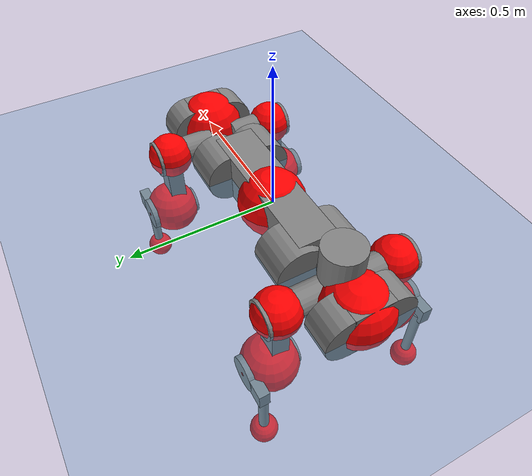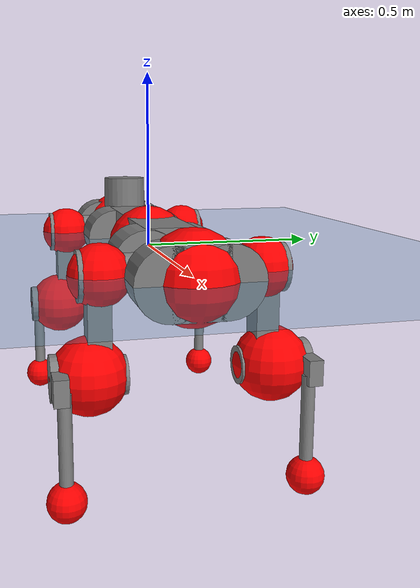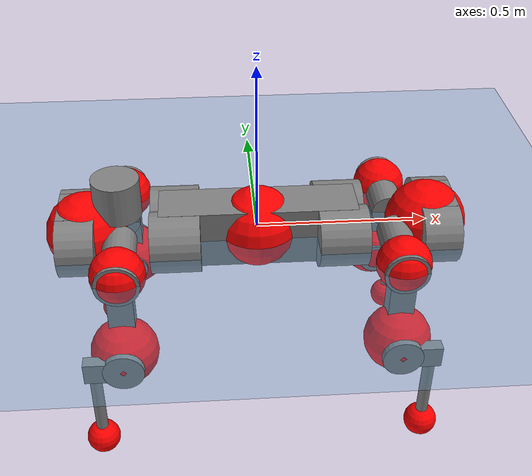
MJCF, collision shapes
<mujoco model="anymal_c">
  <compiler angle="radian" assetdir="assets" balanceinertia="true" inertiafromgeom="false"/>

  <option timestep="0.005" density="1.2" viscosity="2e-05"/>

  <size nkey="1"/>

  <visual>
    <quality shadowsize="8192"/>
    <map shadowclip="0.5"/>
  </visual>

  <default>
    <default class="/">
      <material specular="0" shininess="0.25"/>
      <geom contype="0" conaffinity="0" group="1" solref="-1000 -80"/>
      <site size="0.01 0.005 0.005" group="5"/>
      <general forcelimited="true" forcerange="-80 80" biastype="affine" gainprm="80" biasprm="0 -80 -2"/>
      <default class="anymal_c">
        <joint armature="0.01" damping="0.01" frictionloss="0.1"/>
        <default class="visual">
          <geom type="mesh" group="2"/>
          <default class="visual_zflip"/>
        </default>
        <default class="collision">
          <geom type="cylinder" group="3"/>
          <default class="foot">
            <geom size="0.03 0 0" type="sphere" condim="6" priority="1" friction="0.8 0.02 0.01" solimp="0.015 1 0.03"/>
          </default>
        </default>
      </default>
      <default class="reward_collision_sphere">
        <geom group="5" rgba="1 0 0 1"/>
      </default>
    </default>
  </default>

  <asset>
    <texture type="skybox" colorspace="auto" name="//unnamed_texture_0" builtin="gradient" rgb1="0.95 0.95 0.95" rgb2="0.95 0.95 0.95" width="100" height="600"/>
    <texture type="2d" colorspace="auto" name="texplane" builtin="checker" rgb1="0.345 0.575 0.748" rgb2="0.345 0.575 0.748" markrgb="1 1 1" width="512" height="512"/>
    <texture type="2d" colorspace="linear" name="base" file="base.png"/>
    <texture type="2d" colorspace="linear" name="top_shell" file="top_shell.png"/>
    <texture type="2d" colorspace="linear" name="bottom_shell" file="bottom_shell.png"/>
    <texture type="2d" colorspace="linear" name="remote" file="remote.png"/>
    <texture type="2d" colorspace="linear" name="hatch" file="hatch.png"/>
    <texture type="2d" colorspace="linear" name="handle" file="handle.png"/>
    <texture type="2d" colorspace="linear" name="face" file="face.png"/>
    <texture type="2d" colorspace="linear" name="battery" file="battery.png"/>
    <texture type="2d" colorspace="linear" name="lidar_cage" file="lidar_cage.png"/>
    <texture type="2d" colorspace="linear" name="depth_camera" file="depth_camera.png"/>
    <texture type="2d" colorspace="linear" name="wide_angle_camera" file="wide_angle_camera.png"/>
    <texture type="2d" colorspace="linear" name="lidar" file="lidar.png"/>
    <texture type="2d" colorspace="linear" name="drive" file="drive.png"/>
    <texture type="2d" colorspace="linear" name="hip_l" file="hip_l.png"/>
    <texture type="2d" colorspace="linear" name="shank_l" file="shank_l.png"/>
    <texture type="2d" colorspace="linear" name="foot" file="foot.png"/>
    <texture type="2d" colorspace="linear" name="thigh" file="thigh.png"/>
    <texture type="2d" colorspace="linear" name="shank_r" file="shank_r.png"/>
    <texture type="2d" colorspace="linear" name="hip_r" file="hip_r.png"/>
    <material name="MatPlane" class="/" texture="texplane" texuniform="true" texrepeat="2 2" specular="0.9" shininess="0.5"/>
    <material name="black_plastic" class="/" rgba="0.007 0.007 0.007 1"/>
    <material name="green" class="/" rgba="0.052 0.178 0.033 1"/>
    <material name="red" class="/" rgba="0.178 0.006 0.005 1"/>
    <material name="yellow" class="/" rgba="0.178 0.119 0.006 1"/>
    <material name="lwl" class="/" rgba="0.8 0.8 0.8 1"/>
    <material name="base" class="/" texture="base"/>
    <material name="top_shell" class="/" texture="top_shell"/>
    <material name="bottom_shell" class="/" texture="bottom_shell"/>
    <material name="hip_l" class="/" texture="hip_l"/>
    <material name="thigh" class="/" texture="thigh"/>
    <material name="shank_l" class="/" texture="shank_l"/>
    <material name="foot" class="/" texture="foot"/>
    <material name="hip_r" class="/" texture="hip_r"/>
    <material name="shank" class="/" texture="shank_r"/>
    <material name="hatch" class="/" texture="hatch"/>
    <material name="remote" class="/" texture="remote"/>
    <material name="handle" class="/" texture="handle"/>
    <material name="face" class="/" texture="face"/>
    <material name="depth_camera" class="/" texture="depth_camera"/>
    <material name="wide_angle_camera" class="/" texture="wide_angle_camera"/>
    <material name="battery" class="/" texture="battery"/>
    <material name="lidar_cage" class="/" texture="lidar_cage"/>
    <material name="lidar" class="/" texture="lidar"/>
    <material name="drive" class="/" texture="drive"/>
    <mesh name="base_0" class="/" file="base_0.obj"/>
    <mesh name="base_1" class="/" file="base_1.obj"/>
    <mesh name="base_2" class="/" file="base_2.obj"/>
    <mesh name="base_3" class="/" file="base_3.obj"/>
    <mesh name="base_4" class="/" file="base_4.obj"/>
    <mesh name="base_5" class="/" file="base_5.obj"/>
    <mesh name="top_shell" class="/" file="top_shell.obj"/>
    <mesh name="bottom_shell" class="/" file="bottom_shell.obj"/>
    <mesh name="remote" class="/" file="remote.obj"/>
    <mesh name="handle" class="/" file="handle.obj"/>
    <mesh name="face" class="/" file="face.obj"/>
    <mesh name="wide_angle_camera" class="/" file="wide_angle_camera.obj"/>
    <mesh name="depth_camera" class="/" file="depth_camera.obj"/>
    <mesh name="battery" class="/" file="battery.obj"/>
    <mesh name="lidar_cage" class="/" file="lidar_cage.obj"/>
    <mesh name="lidar" class="/" file="lidar.obj"/>
    <mesh name="drive" class="/" file="drive.obj"/>
    <mesh name="hip_l" class="/" file="hip_l.obj"/>
    <mesh name="thigh" class="/" file="thigh.obj"/>
    <mesh name="shank_l" class="/" file="shank_l.obj"/>
    <mesh name="foot" class="/" file="foot.obj"/>
    <mesh name="hip_r" class="/" file="hip_r.obj"/>
    <mesh name="hatch" class="/" file="hatch.obj"/>
    <mesh name="shank_r" class="/" file="shank_r.obj"/>
  </asset>

  <worldbody>
    <geom name="floor" class="/" size="100 100 0.125" type="plane" group="0" material="MatPlane"/>
    <light name="toplight_shadow" class="/" pos="0 0 5" dir="0.0990148 0.0990148 -0.990148" type="directional" ambient="0.04 0.04 0.04" diffuse="0.55 0.55 0.55" specular="0.12 0.12 0.12"/>
    <light name="toplight_fill" class="/" pos="0 0 5" dir="0.0990148 0.0990148 -0.990148" type="directional" castshadow="false" ambient="0.04 0.04 0.04" diffuse="0.3 0.3 0.3" specular="0.08 0.08 0.08"/>
    <body name="trunk" childclass="anymal_c" pos="0.0027573 -5.7391e-05 -0.000113016" quat="1 -9.23463e-05 0.000422633 0.000278437">
      <inertial pos="0.00270155 0.0010085 0.0427757" quat="0.496115 0.501822 0.498969 0.503065" mass="18.1216" diaginertia="1.10349 0.537328 0.116993"/>
      <joint name="//unnamed_joint_0" type="free" armature="0" damping="0" frictionloss="0"/>
      <geom name="//unnamed_geom_1" class="visual" material="green" mesh="base_0"/>
      <geom name="//unnamed_geom_2" class="visual" material="yellow" mesh="base_1"/>
      <geom name="//unnamed_geom_3" class="visual" material="red" mesh="base_2"/>
      <geom name="//unnamed_geom_4" class="visual" material="black_plastic" mesh="base_3"/>
      <geom name="//unnamed_geom_5" class="visual" material="lwl" mesh="base_4"/>
      <geom name="//unnamed_geom_6" class="visual" material="base" mesh="base_5"/>
      <geom name="trunk_1" class="collision" size="0.284813 0.068748 0.0883903" type="box"/>
      <geom name="trunk_2" class="collision" size="0.0883903 0.0712033" pos="0.239431 0.067311 0" quat="0.707107 0 0.707107 0"/>
      <geom name="trunk_3" class="collision" size="0.0883903 0.0712033" pos="-0.239431 0.067311 0" quat="0.707107 0 0.707107 0"/>
      <geom name="trunk_4" class="collision" size="0.0883903 0.0712033" pos="0.239431 -0.067311 0" quat="0.707107 0 0.707107 0"/>
      <geom name="trunk_5" class="collision" size="0.0883903 0.0712033" pos="-0.239431 -0.067311 0" quat="0.707107 0 0.707107 0"/>
      <geom name="//unnamed_geom_12" class="visual" material="top_shell" mesh="top_shell"/>
      <geom name="//unnamed_geom_13" class="visual" material="bottom_shell" mesh="bottom_shell"/>
      <geom name="//unnamed_geom_14" class="visual" material="remote" mesh="remote"/>
      <geom name="//unnamed_geom_15" class="visual" material="handle" mesh="handle"/>
      <geom name="//unnamed_geom_16" class="visual" pos="0.456295 0 0" quat="1 0 0 0" material="face" mesh="face"/>
      <geom name="trunk_6" class="collision" size="0.0540163 0.068748 0.0883903" pos="0.51684 0 0" type="box"/>
      <geom name="//unnamed_geom_18" class="collision" size="0.0883903 0.0540163" pos="0.51684 0.067311 0" quat="0.707107 0 0.707107 0"/>
      <geom name="//unnamed_geom_19" class="collision" size="0.0883903 0.0540163" pos="0.51684 -0.067311 0" quat="0.707107 0 0.707107 0"/>
      <geom name="//unnamed_geom_20" class="visual" pos="0.50819 0 -0.0241621" quat="0.965926 0 0.258819 0" material="depth_camera" mesh="depth_camera"/>
      <geom name="//unnamed_geom_21" class="visual" pos="0.564726 0 0.0132324" material="wide_angle_camera" mesh="wide_angle_camera"/>
      <geom name="//unnamed_geom_22" class="visual_zflip" pos="-0.456295 0 0" quat="0 0 0 1" material="face" mesh="face"/>
      <geom name="trunk_7" class="collision" size="0.0540163 0.068748 0.0883903" pos="-0.51684 0 0" quat="0 0 0 1" type="box"/>
      <geom name="//unnamed_geom_24" class="collision" size="0.0883903 0.0540163" pos="-0.51684 -0.067311 0" quat="0 -0.707107 0 0.707107"/>
      <geom name="//unnamed_geom_25" class="collision" size="0.0883903 0.0540163" pos="-0.51684 0.067311 0" quat="0 -0.707107 0 0.707107"/>
      <geom name="//unnamed_geom_26" class="visual" pos="-0.50819 0 -0.0241621" quat="0 -0.258819 0 0.965926" material="depth_camera" mesh="depth_camera"/>
      <geom name="//unnamed_geom_27" class="visual_zflip" pos="-0.564726 0 0.0132324" quat="0 0 0 1" material="wide_angle_camera" mesh="wide_angle_camera"/>
      <geom name="//unnamed_geom_28" class="visual" material="battery" mesh="battery"/>
      <geom name="//unnamed_geom_29" class="visual" pos="0 0.0716866 0.0273265" quat="0.683013 -0.183013 0.183013 0.683013" material="depth_camera" mesh="depth_camera"/>
      <geom name="//unnamed_geom_30" class="visual" pos="0 -0.0716866 0.0273265" quat="0.683013 0.183013 0.183013 -0.683013" material="depth_camera" mesh="depth_camera"/>
      <geom name="//unnamed_geom_31" class="visual" pos="-0.400703 0 0.0649685" quat="1 0 0 0" material="lidar_cage" mesh="lidar_cage"/>
      <geom name="trunk_8" class="collision" size="0.068748 0.0589268" pos="-0.400703 0 0.118004"/>
      <geom name="//unnamed_geom_33" class="visual" pos="-0.400703 -5.47059e-05 0.125694" quat="0.707107 0 0 -0.707107" material="lidar" mesh="lidar"/>
      <geom name="//unnamed_geom_34" class="visual" pos="0.330139 0.0999773 1.33964e-09" quat="0.258819 0.965926 0 0" material="drive" mesh="drive"/>
      <geom name="//unnamed_geom_35" class="visual" pos="0.330139 -0.0999773 -1.33964e-09" quat="0.258819 -0.965926 0 0" material="drive" mesh="drive"/>
      <geom name="//unnamed_geom_36" class="visual" pos="-0.330139 0.0999773 -1.33964e-09" quat="0 0 0.965926 -0.258819" material="drive" mesh="drive"/>
      <geom name="//unnamed_geom_37" class="visual" pos="-0.330139 -0.0999773 1.33964e-09" quat="0 0 -0.965926 -0.258819" material="drive" mesh="drive"/>
      <geom name="//unnamed_geom_38" class="visual" pos="0.127696 0 0.0645266" quat="1 0 0 0" material="hatch" mesh="hatch"/>
      <geom name="//unnamed_geom_39" class="reward_collision_sphere" size="0.117854"/>
      <geom name="//unnamed_geom_40" class="reward_collision_sphere" size="0.117854" pos="0.495374 0 0"/>
      <geom name="//unnamed_geom_41" class="reward_collision_sphere" size="0.117854" pos="-0.495374 0 0"/>
      <site name="imu" pos="0.269386 0.0117806 0.0275172" size="0.00982114"/>
      <camera name="track" pos="0 -1.92317 0" quat="0.707107 0.707107 0 0" mode="trackcom"/>
      <camera name="ego_camera" pos="0.495374 0 -0.035357" quat="-0.5 -0.5 0.5 0.5"/>
      <body name="LF_HIP" pos="0.329456 0.100575 -0.00141958" quat="0.258152 0.966104 -0.000349811 -0.00103177">
        <inertial pos="0.0596886 -0.0143595 -0.00725481" quat="-0.128989 0.70998 -0.134326 0.679151" mass="2.65144" diaginertia="0.00953063 0.00390277 0.0017766"/>
        <joint name="LF_HAA" pos="0 0 0" axis="0.999913 -0.0107429 -0.0076409" range="-0.718604 0.489844" armature="0.00852079" damping="0.00448562" frictionloss="0.101884"/>
        <geom name="//unnamed_geom_42" class="visual" pos="0 7.8805e-05 -1.29437e-05" quat="0.258819 -0.965926 0 0" material="hip_l" mesh="hip_l"/>
        <geom name="//unnamed_geom_43" class="visual" pos="0.0659398 -0.0780391 -0.0444815" quat="0.183013 -0.683013 0.683013 0.183013" material="drive" mesh="drive"/>
        <geom name="//unnamed_geom_44" class="collision" size="0.0491057 0.068748" pos="0.0659398 -0.0115004 -0.00610351" quat="-0.353553 -0.612372 0.612372 -0.353553"/>
        <body name="LF_THIGH" pos="0.0647395 -0.0698948 -0.0383761" quat="0.183103 -0.683096 0.682891 0.183066">
          <inertial pos="0.0336967 0.000131514 -0.219672" quat="0.993444 -0.00643935 -0.0797708 0.0816395" mass="2.94057" diaginertia="0.0495001 0.0246771 0.00225473"/>
          <joint name="LF_HFE" pos="0 0 0" axis="0.999979 -0.00248134 0.00597485" range="-3.1445 3.13595" armature="0.0112394" damping="0.00178999" frictionloss="0.0914225"/>
          <geom name="//unnamed_geom_45" class="visual" pos="0.00277044 4.36557e-06 0" quat="0.707107 0 0 -0.707107" material="thigh" mesh="thigh"/>
          <geom name="//unnamed_geom_46" class="collision" size="0.0638374 0.0392846" pos="0.0440332 0 0" quat="0.5 0.5 -0.5 -0.5"/>
          <geom name="//unnamed_geom_47" class="collision" size="0.0368293 0.0294634 0.138786" pos="0.0330249 0 -0.124911" quat="0.707107 0 0 -0.707107" type="box"/>
          <geom name="//unnamed_geom_48" class="visual" pos="0.110413 0 -0.251919" quat="1 0 0 0" material="drive" mesh="drive"/>
          <geom name="//unnamed_geom_49" class="collision" size="0.0491057 0.068748" pos="0.0333552 0 -0.251919" quat="0.707107 0 0.707107 0"/>
          <geom name="//unnamed_geom_50" class="reward_collision_sphere" size="0.0785691" pos="0.0275208 0 0"/>
          <body name="LF_SHANK" pos="0.110415 -0.00287608 -0.251214" quat="0.999999 -0.000540413 0.000570416 0.000670961">
            <inertial pos="0.00670627 -0.0578278 -0.0711633" quat="0.991404 -0.129009 -0.00034546 -0.0217898" mass="0.57991" diaginertia="0.0162494 0.00771657 0.00059532"/>
            <joint name="LF_KFE" pos="0 0 0" axis="0.999996 0.00283243 0.000129926" stiffness="9.36807e-05" range="-3.14087 3.15853" armature="0.00993368" damping="0" frictionloss="0.0970157"/>
            <geom name="//unnamed_geom_51" class="visual" pos="0.000903381 0.00481688 0" quat="0.707107 0 0 -0.707107" material="shank_l" mesh="shank_l"/>
            <geom name="LF_kfe_act" class="collision" size="0.0589268 0.0196423" pos="0.0220166 0 0" quat="0.5 0.5 -0.5 -0.5"/>
            <geom name="//unnamed_geom_53" class="collision" size="0.0564706 0.0331463 0.0186602" pos="0.0220166 -0.0552902 0" quat="0.5 0.5 -0.5 -0.5" type="box"/>
            <geom name="//unnamed_geom_54" class="visual" pos="0.0143656 -0.0830192 -0.29874" quat="0.382683 0 0 -0.92388" material="foot" mesh="foot"/>
            <geom name="LF_calf" class="collision" size="0.017187 0.138726" pos="0.0143658 -0.0845714 -0.14937" quat="0.707107 0 0 -0.707107"/>
            <geom name="LF_foot" class="foot" size="0.0318035" pos="0.0143658 -0.0845714 -0.278852" quat="0.707107 0 0 -0.707107"/>
            <geom name="//unnamed_geom_57" class="reward_collision_sphere" size="0.0982114" pos="-0.0550416 0 0"/>
            <geom name="//unnamed_geom_58" class="reward_collision_sphere" size="0.0491057" pos="0.0143658 -0.0845714 -0.278852"/>
            <site name="LF_foot" class="foot" pos="0.0143658 -0.0845714 -0.278852" quat="0.707107 0 0 -0.707107" size="0.00982114"/>
          </body>
        </body>
      </body>
      <body name="RF_HIP" pos="0.327877 -0.0980506 -0.00164155" quat="0.259114 -0.965847 0.000379171 0.000241443">
        <inertial pos="0.0651317 0.0143867 -0.0101376" quat="0.131316 0.684467 0.124987 0.706144" mass="2.69568" diaginertia="0.00975417 0.00408069 0.00183918"/>
        <joint name="RF_HAA" pos="0 0 0" axis="0.99988 0.0114639 -0.0103723" range="-0.547994 0.70836" armature="0.00958723" damping="0.00656016" frictionloss="0.0850934"/>
        <geom name="//unnamed_geom_59" class="visual" pos="0 -7.88043e-05 -1.29436e-05" quat="0.258819 0.965926 0 0" material="hip_r" mesh="hip_r"/>
        <geom name="//unnamed_geom_60" class="visual" pos="0.0659398 0.0780391 -0.0444815" quat="0.183013 0.683013 0.683013 -0.183013" material="drive" mesh="drive"/>
        <geom name="//unnamed_geom_61" class="collision" size="0.0491057 0.068748" pos="0.0659398 0.0115004 -0.00610351" quat="-0.353553 0.612372 0.612372 0.353553"/>
        <body name="RF_THIGH" pos="0.0660314 0.0695839 -0.0363079" quat="0.183022 0.682945 0.683068 -0.18305">
          <inertial pos="0.0331167 0.00228682 -0.217727" quat="0.992829 -0.00507113 -0.0804923 0.0882341" mass="2.89258" diaginertia="0.0491993 0.0241247 0.00224573"/>
          <joint name="RF_HFE" pos="0 0 0" axis="0.999995 0.00186294 -0.00240131" stiffness="0.00340946" range="-3.12863 3.15716" armature="0.0102864" damping="0" frictionloss="0.0930766"/>
          <geom name="//unnamed_geom_62" class="visual" pos="0.00277044 4.36557e-06 0" quat="0.707107 0 0 -0.707107" material="thigh" mesh="thigh"/>
          <geom name="//unnamed_geom_63" class="collision" size="0.0638374 0.0392846" pos="0.0440332 0 0" quat="0.5 0.5 0.5 0.5"/>
          <geom name="//unnamed_geom_64" class="collision" size="0.0368293 0.0294634 0.138786" pos="0.0330249 0 -0.124911" quat="0.707107 0 0 0.707107" type="box"/>
          <geom name="//unnamed_geom_65" class="visual" pos="0.110413 0 -0.251919" quat="1 0 0 0" material="drive" mesh="drive"/>
          <geom name="//unnamed_geom_66" class="collision" size="0.0491057 0.068748" pos="0.0333552 0 -0.251919" quat="0.707107 0 0.707107 0"/>
          <geom name="//unnamed_geom_67" class="reward_collision_sphere" size="0.0785691" pos="0.0275208 0 0"/>
          <body name="RF_SHANK" pos="0.111154 -0.00064715 -0.248594" quat="0.999999 7.44245e-05 0.000275768 0.00128935">
            <inertial pos="0.00846432 0.0570273 -0.0684239" quat="0.992451 0.11917 -0.00301201 0.0288107" mass="0.544638" diaginertia="0.016805 0.00793899 0.000630556"/>
            <joint name="RF_KFE" pos="0 0 0" axis="0.999983 -0.00137505 0.00565542" stiffness="0.00474383" range="-3.19108 3.13359" armature="0.00941864" damping="0.0214462" frictionloss="0.111692"/>
            <geom name="//unnamed_geom_68" class="visual" pos="0.000903376 -0.00481687 0" quat="0.707107 0 0 0.707107" material="shank" mesh="shank_r"/>
            <geom name="RF_kfe_act" class="collision" size="0.0589268 0.0196423" pos="0.0220166 0 0" quat="0.5 0.5 0.5 0.5"/>
            <geom name="//unnamed_geom_70" class="collision" size="0.0564706 0.0331463 0.0186602" pos="0.0220166 0.0552902 0" quat="0.5 0.5 0.5 0.5" type="box"/>
            <geom name="//unnamed_geom_71" class="visual" pos="0.0143661 0.0830192 -0.29874" quat="0.382683 0 0 0.92388" material="foot" mesh="foot"/>
            <geom name="RF_calf" class="collision" size="0.017187 0.138726" pos="0.0143658 0.0845714 -0.14937" quat="0.707107 0 0 0.707107"/>
            <geom name="RF_foot" class="foot" size="0.0301157" pos="0.0143658 0.0845714 -0.278852" quat="0.707107 0 0 0.707107"/>
            <geom name="//unnamed_geom_74" class="reward_collision_sphere" size="0.0982114" pos="-0.0550416 0 0"/>
            <geom name="//unnamed_geom_75" class="reward_collision_sphere" size="0.0491057" pos="0.0143658 0.0845714 -0.278852"/>
            <site name="RF_foot" class="foot" pos="0.0143658 0.0845714 -0.278852" quat="0.707107 0 0 0.707107" size="0.00982114"/>
          </body>
        </body>
      </body>
      <body name="LH_HIP" pos="-0.327436 0.0975855 0.000870697" quat="0.000182219 -0.000404047 0.965848 -0.25911">
        <inertial pos="0.065236 0.0121348 -0.00778567" quat="0.139996 0.669961 0.134146 0.71663" mass="2.61905" diaginertia="0.00961665 0.0040639 0.00172154"/>
        <joint name="LH_HAA" pos="0 0 0" axis="0.999987 0.00024594 0.00510202" range="-0.453039 0.723453" armature="0.00983295" damping="0.0106245" frictionloss="0.100368"/>
        <geom name="//unnamed_geom_76" class="visual" pos="0 -7.88043e-05 -1.29436e-05" quat="-0.258819 -0.965926 0 0" material="hip_r" mesh="hip_r"/>
        <geom name="//unnamed_geom_77" class="visual" pos="0.0659398 0.0780391 -0.0444815" quat="0.183013 0.683013 0.683013 -0.183013" material="drive" mesh="drive"/>
        <geom name="//unnamed_geom_78" class="collision" size="0.0491057 0.068748" pos="0.0659398 0.0115004 -0.00610351" quat="-0.353553 0.612372 0.612372 0.353553"/>
        <body name="LH_THIGH" pos="0.0662778 0.0701495 -0.036818" quat="0.182975 0.683073 0.682998 -0.18288">
          <inertial pos="0.0329323 0.00259231 -0.216732" quat="0.991701 -0.0122581 -0.0905929 0.0904004" mass="2.94995" diaginertia="0.0489919 0.0253528 0.00224808"/>
          <joint name="LH_HFE" pos="0 0 0" axis="0.999909 -0.00527674 -0.0124204" range="-3.10049 3.17522" armature="0.0111915" damping="0.00710121" frictionloss="0.111422"/>
          <geom name="//unnamed_geom_79" class="visual" pos="0.00277044 4.36557e-06 0" quat="0.707107 0 0 -0.707107" material="thigh" mesh="thigh"/>
          <geom name="//unnamed_geom_80" class="collision" size="0.0638374 0.0392846" pos="0.0440332 0 0" quat="0.5 0.5 -0.5 -0.5"/>
          <geom name="//unnamed_geom_81" class="collision" size="0.0368293 0.0294634 0.138786" pos="0.0330249 0 -0.124911" quat="0.707107 0 0 -0.707107" type="box"/>
          <geom name="//unnamed_geom_82" class="visual" pos="0.110413 0 -0.251919" quat="1 0 0 0" material="drive" mesh="drive"/>
          <geom name="//unnamed_geom_83" class="collision" size="0.0491057 0.068748" pos="0.0333552 0 -0.251919" quat="0.707107 0 0.707107 0"/>
          <geom name="//unnamed_geom_84" class="reward_collision_sphere" size="0.0785691" pos="0.0275208 0 0"/>
          <body name="LH_SHANK" pos="0.109007 0.00191822 -0.254743" quat="0.999999 -0.000967438 0.000942227 -0.000119586">
            <inertial pos="0.00570288 0.0587214 -0.0689366" quat="0.993612 0.11022 -0.00176749 0.0241745" mass="0.536954" diaginertia="0.016284 0.00753271 0.000606709"/>
            <joint name="LH_KFE" pos="0 0 0" axis="0.999996 0.00262076 -0.00087903" range="-3.16391 3.10381" armature="0.00928577" damping="0.00977847" frictionloss="0.0858921"/>
            <geom name="//unnamed_geom_85" class="visual" pos="0.000903376 -0.00481687 0" quat="-0.707107 0 0 -0.707107" material="shank" mesh="shank_r"/>
            <geom name="LH_kfe_act" class="collision" size="0.0589268 0.0196423" pos="0.0220166 0 0" quat="0.5 0.5 -0.5 -0.5"/>
            <geom name="//unnamed_geom_87" class="collision" size="0.0564706 0.0331463 0.0186602" pos="0.0220166 0.0552902 0" quat="0.5 0.5 -0.5 -0.5" type="box"/>
            <geom name="//unnamed_geom_88" class="visual" pos="0.0143661 0.0830192 -0.29874" quat="-0.382683 0 0 -0.92388" material="foot" mesh="foot"/>
            <geom name="LH_calf" class="collision" size="0.017187 0.138726" pos="0.0143658 0.0845714 -0.14937" quat="0.707107 0 0 -0.707107"/>
            <geom name="LH_foot" class="foot" size="0.0273778" pos="0.0143658 0.0845714 -0.278852" quat="0.707107 0 0 -0.707107"/>
            <geom name="//unnamed_geom_91" class="reward_collision_sphere" size="0.0982114" pos="-0.0550416 0 0"/>
            <geom name="//unnamed_geom_92" class="reward_collision_sphere" size="0.0491057" pos="0.0143658 0.0845714 -0.278852"/>
            <site name="LH_foot" class="foot" pos="0.0143658 0.0845714 -0.278852" quat="0.707107 0 0 -0.707107" size="0.00982114"/>
          </body>
        </body>
      </body>
      <body name="RH_HIP" pos="-0.332687 -0.100471 0.000488178" quat="0.000128261 7.50811e-05 -0.965952 -0.258723">
        <inertial pos="0.0646858 -0.0137917 -0.00784429" quat="-0.141084 0.708581 -0.132358 0.678594" mass="2.66556" diaginertia="0.00975971 0.00419358 0.00183744"/>
        <joint name="RH_HAA" pos="0 0 0" axis="0.999904 0.00156646 0.0138003" range="-0.72063 0.483285" armature="0.00992903" damping="0.0146889" frictionloss="0.100576"/>
        <geom name="//unnamed_geom_93" class="visual" pos="0 7.8805e-05 -1.29437e-05" quat="-0.258819 0.965926 0 0" material="hip_l" mesh="hip_l"/>
        <geom name="//unnamed_geom_94" class="visual" pos="0.0659398 -0.0780391 -0.0444815" quat="-0.183013 0.683013 -0.683013 -0.183013" material="drive" mesh="drive"/>
        <geom name="//unnamed_geom_95" class="collision" size="0.0491057 0.068748" pos="0.0659398 -0.0115004 -0.00610351" quat="0.353553 0.612372 -0.612372 0.353553"/>
        <body name="RH_THIGH" pos="0.0647513 -0.0695599 -0.0344844" quat="-0.183138 0.683034 -0.682953 -0.18303">
          <inertial pos="0.0332202 5.87292e-05 -0.217595" quat="0.992626 -0.0145649 -0.0777706 0.0918324" mass="2.95113" diaginertia="0.0486812 0.025438 0.00233172"/>
          <joint name="RH_HFE" pos="0 0 0" axis="0.999986 0.00506233 -0.00163777" range="-3.13408 3.14148" armature="0.0110027" damping="0" frictionloss="0.0941116"/>
          <geom name="//unnamed_geom_96" class="visual" pos="0.00277044 4.36557e-06 0" quat="0.707107 0 0 -0.707107" material="thigh" mesh="thigh"/>
          <geom name="//unnamed_geom_97" class="collision" size="0.0638374 0.0392846" pos="0.0440332 0 0" quat="0.5 0.5 0.5 0.5"/>
          <geom name="//unnamed_geom_98" class="collision" size="0.0368293 0.0294634 0.138786" pos="0.0330249 0 -0.124911" quat="0.707107 0 0 0.707107" type="box"/>
          <geom name="//unnamed_geom_99" class="visual" pos="0.110413 0 -0.251919" quat="1 0 0 0" material="drive" mesh="drive"/>
          <geom name="//unnamed_geom_100" class="collision" size="0.0491057 0.068748" pos="0.0333552 0 -0.251919" quat="0.707107 0 0.707107 0"/>
          <geom name="//unnamed_geom_101" class="reward_collision_sphere" size="0.0785691" pos="0.0275208 0 0"/>
          <body name="RH_SHANK" pos="0.110717 -2.15708e-05 -0.251648" quat="1 -0.000238424 -0.000138529 0.000323238">
            <inertial pos="0.00334906 -0.0614236 -0.0686234" quat="0.993024 -0.1151 0.00010839 -0.0256158" mass="0.578058" diaginertia="0.0160744 0.00788022 0.000604805"/>
            <joint name="RH_KFE" pos="0 0 0" axis="0.999991 -0.00247267 0.00330698" range="-3.11306 3.1905" armature="0.00993633" damping="0.00417433" frictionloss="0.11147"/>
            <geom name="//unnamed_geom_102" class="visual" pos="0.000903381 0.00481688 0" quat="0.707107 0 0 -0.707107" material="shank_l" mesh="shank_l"/>
            <geom name="RH_kfe_act" class="collision" size="0.0589268 0.0196423" pos="0.0220166 0 0" quat="0.5 0.5 0.5 0.5"/>
            <geom name="//unnamed_geom_104" class="collision" size="0.0564706 0.0331463 0.0186602" pos="0.0220166 -0.0552902 0" quat="0.5 0.5 0.5 0.5" type="box"/>
            <geom name="//unnamed_geom_105" class="visual" pos="0.0143656 -0.0830192 -0.29874" quat="0.382683 0 0 -0.92388" material="foot" mesh="foot"/>
            <geom name="RH_calf" class="collision" size="0.017187 0.138726" pos="0.0143658 -0.0845714 -0.14937" quat="0.707107 0 0 0.707107"/>
            <geom name="RH_foot" class="foot" size="0.0305143" pos="0.0143658 -0.0845714 -0.278852" quat="0.707107 0 0 0.707107"/>
            <geom name="//unnamed_geom_108" class="reward_collision_sphere" size="0.0982114" pos="-0.0550416 0 0"/>
            <geom name="//unnamed_geom_109" class="reward_collision_sphere" size="0.0491057" pos="0.0143658 -0.0845714 -0.278852"/>
            <site name="RH_foot" class="foot" pos="0.0143658 -0.0845714 -0.278852" quat="0.707107 0 0 0.707107" size="0.00982114"/>
          </body>
        </body>
      </body>
    </body>
  </worldbody>

  <contact>
    <pair class="/" geom1="floor" geom2="LF_foot" name="//unnamed_contact_0"/>
    <pair class="/" geom1="floor" geom2="RF_foot" name="//unnamed_contact_1"/>
    <pair class="/" geom1="floor" geom2="LH_foot" name="//unnamed_contact_2"/>
    <pair class="/" geom1="floor" geom2="RH_foot" name="//unnamed_contact_3"/>
  </contact>

  <actuator>
    <general name="LF_HAA" class="/" joint="LF_HAA" forcerange="-79.9686 79.9686" gainprm="78.7291" biasprm="0 -78.7291 -1.99115"/>
    <general name="LF_HFE" class="/" joint="LF_HFE" forcerange="-70.8472 70.8472" gainprm="78.7291" biasprm="0 -78.7291 -1.99115"/>
    <general name="LF_KFE" class="/" joint="LF_KFE" forcerange="-80.2465 80.2465" gainprm="78.7291" biasprm="0 -78.7291 -1.99115"/>
    <general name="RF_HAA" class="/" joint="RF_HAA" forcerange="-78.3137 78.3137" gainprm="78.7291" biasprm="0 -78.7291 -1.99115"/>
    <general name="RF_HFE" class="/" joint="RF_HFE" forcerange="-76.4027 76.4027" gainprm="78.7291" biasprm="0 -78.7291 -1.99115"/>
    <general name="RF_KFE" class="/" joint="RF_KFE" forcerange="-83.6051 83.6051" gainprm="78.7291" biasprm="0 -78.7291 -1.99115"/>
    <general name="LH_HAA" class="/" joint="LH_HAA" forcerange="-79.2462 79.2462" gainprm="78.7291" biasprm="0 -78.7291 -1.99115"/>
    <general name="LH_HFE" class="/" joint="LH_HFE" forcerange="-84.555 84.555" gainprm="78.7291" biasprm="0 -78.7291 -1.99115"/>
    <general name="LH_KFE" class="/" joint="LH_KFE" forcerange="-76.5474 76.5474" gainprm="78.7291" biasprm="0 -78.7291 -1.99115"/>
    <general name="RH_HAA" class="/" joint="RH_HAA" forcerange="-77.7207 77.7207" gainprm="78.7291" biasprm="0 -78.7291 -1.99115"/>
    <general name="RH_HFE" class="/" joint="RH_HFE" forcerange="-77.372 77.372" gainprm="78.7291" biasprm="0 -78.7291 -1.99115"/>
    <general name="RH_KFE" class="/" joint="RH_KFE" forcerange="-71.2363 71.2363" gainprm="78.7291" biasprm="0 -78.7291 -1.99115"/>
  </actuator>

  <sensor>
    <gyro site="imu" name="imu_angular_velocity"/>
    <velocimeter site="imu" name="imu_linear_velocity"/>
    <framelinvel objtype="site" objname="LF_foot" name="LF_foot_global_linear_velocity"/>
    <framelinvel objtype="site" objname="RF_foot" name="RF_foot_global_linear_velocity"/>
    <framelinvel objtype="site" objname="LH_foot" name="LH_foot_global_linear_velocity"/>
    <framelinvel objtype="site" objname="RH_foot" name="RH_foot_global_linear_velocity"/>
  </sensor>

  <keyframe>
    <key name="home" qpos="0 0 0.55 1 0 0 0 0 0.4 -0.8 0 -0.4 0.8 0 -0.4 0.8 0 0.4 -0.8"/>
  </keyframe>
</mujoco>
